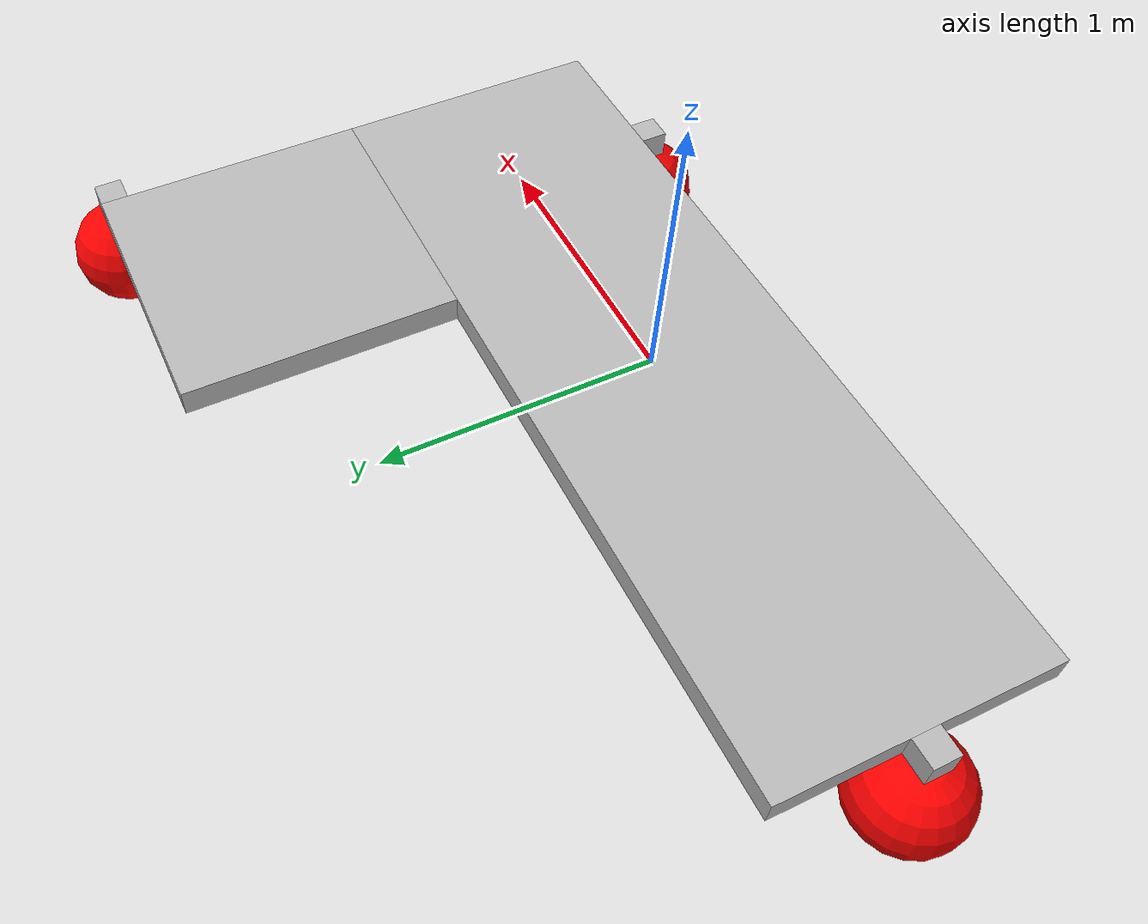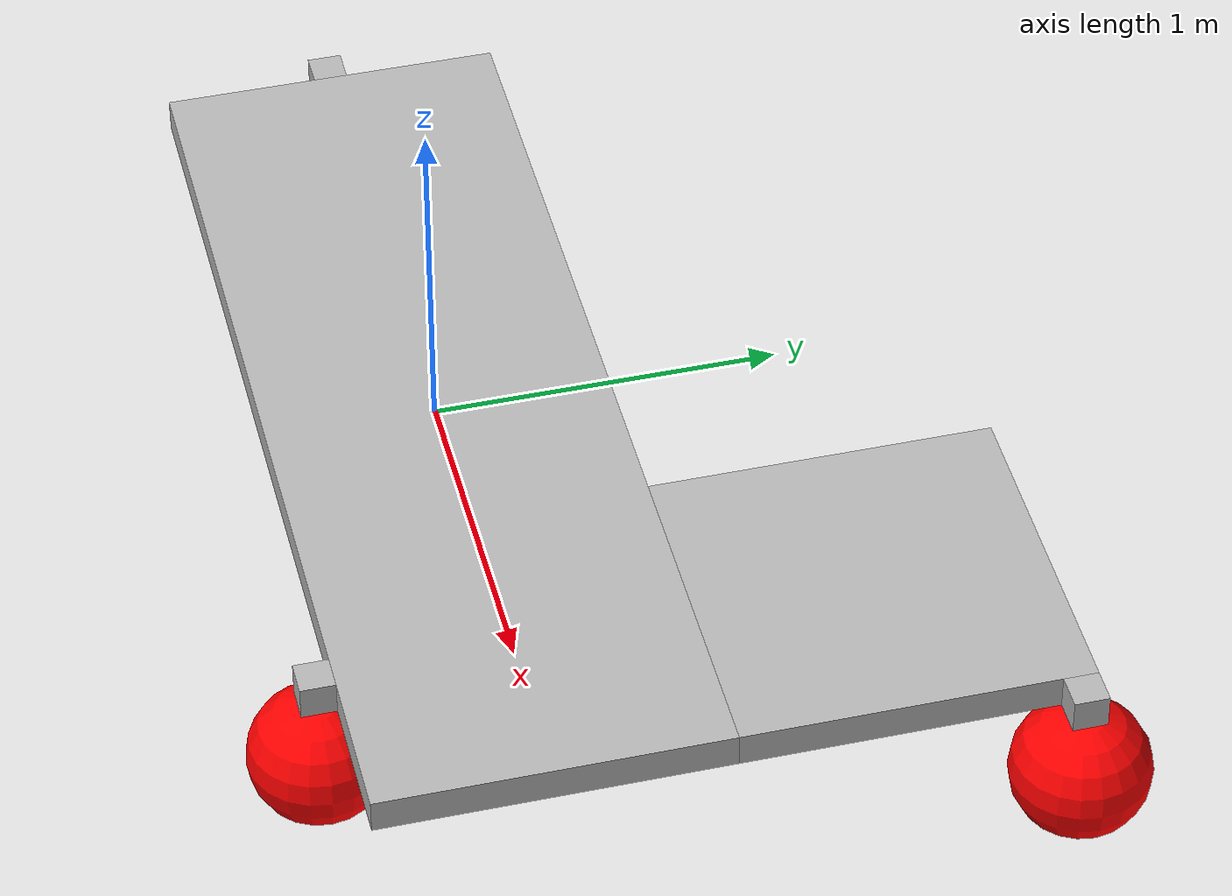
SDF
<?xml version='1.0'?>
<sdf version='1.0'>
  <model name="wheel_ball">
    <static>false</static>
    <link name="obstacle_1">
      <pose>0 0 0 0 0 0</pose>
        <inertial>
          <inertia>
            <ixx>0.505</ixx>
            <ixy>0</ixy>
            <ixz>0</ixz>
            <iyy>4.505</iyy>
            <iyz>0</iyz>
            <izz>5.5</izz>
          </inertia>
          <mass>6</mass>
        </inertial>

        <collision name="my_collision">
            <geometry>
             <box>
             <size>3.0 1.0 0.1</size>
             </box>
            </geometry>

        </collision>

        <visual name="my_visual">
            <geometry>
             <box>
             <size>3.0 1.0 0.1</size>
             </box>
            </geometry>
        </visual>
    </link>

    <link name="obstacle_2">
      <pose>1 1 0 0 0 0</pose>
        <inertial>
          <inertia>
            <ixx>0.168333333</ixx>
            <ixy>0</ixy>
            <ixz>0</ixz>
            <iyy>0.168333333</iyy>
            <iyz>0</iyz>
            <izz>0.333333333</izz>
          </inertia>
          <mass>2</mass>
        </inertial>

        <collision name="my_collision">
            <geometry>
             <box>
             <size>1.0 1.0 0.1</size>
             </box>
            </geometry>

        </collision>

        <visual name="my_visual">
            <geometry>
             <box>
             <size>1.0 1.0 0.1</size>
             </box>
            </geometry>
        </visual>
    </link>

    <joint name="obstacle_joint" type="fixed">
      <parent>obstacle_1</parent>
      <child>obstacle_2</child>
      <pose>0.00 0.0 0.0 0 0.0 0.0</pose>
    </joint>

    <link name="payload_link_1">
      <pose>-1.55 0 0 0 0 0</pose>
        <inertial>
          <inertia>
            <ixx>0.0000666</ixx>
            <ixy>0</ixy>
            <ixz>0</ixz>
            <iyy>0.0000666</iyy>
            <iyz>0</iyz>
            <izz>0.0000666</izz>
          </inertia>
          <mass>0.04</mass>
        </inertial>

        <collision name="payload_link_1_collision">
            <geometry>
             <box>
             <size>0.1 0.1 0.1</size>
             </box>
            </geometry>

        </collision>

        <visual name="payload_link_1_visual">
            <geometry>
             <box>
             <size>0.1 0.1 0.1</size>
             </box>
            </geometry>
        </visual>
    </link>

    <joint name="payload_joint_1" type="revolute">
      <parent>obstacle_1</parent>
      <child>payload_link_1</child>
      <axis>
        <xyz>0 0 1</xyz>
        <limit>
          <upper>0</upper>
          <lower>0</lower>
        </limit>
      </axis>
      <sensor name="force_torque" type="force_torque">
        <update_rate>200</update_rate>
        <always_on>true</always_on>
      </sensor>
    </joint>

    <link name="payload_link_2">
      <pose>1 -0.55 0 0 0 0</pose>
        <inertial>
          <inertia>
            <ixx>0.0000666</ixx>
            <ixy>0</ixy>
            <ixz>0</ixz>
            <iyy>0.0000666</iyy>
            <iyz>0</iyz>
            <izz>0.0000666</izz>
          </inertia>
          <mass>0.04</mass>
        </inertial>

        <collision name="payload_link_2_collision">
            <geometry>
             <box>
             <size>0.1 0.1 0.1</size>
             </box>
            </geometry>

        </collision>

        <visual name="payload_link_2_visual">
            <geometry>
             <box>
             <size>0.1 0.1 0.1</size>
             </box>
            </geometry>
        </visual>
    </link>

    <joint name="payload_joint_2" type="revolute">
      <parent>obstacle_1</parent>
      <child>payload_link_2</child>
      <axis>
        <xyz>0 0 1</xyz>
        <limit>
          <upper>0</upper>
          <lower>0</lower>
        </limit>
      </axis>
      <sensor name="force_torque" type="force_torque">
        <update_rate>200</update_rate>
        <always_on>true</always_on>
      </sensor>
    </joint>

    <link name="payload_link_3">
      <pose>1.55 1.45 0 0 0 0</pose>
        <inertial>
          <inertia>
            <ixx>0.0000666</ixx>
            <ixy>0</ixy>
            <ixz>0</ixz>
            <iyy>0.0000666</iyy>
            <iyz>0</iyz>
            <izz>0.0000666</izz>
          </inertia>
          <mass>0.04</mass>
        </inertial>

        <collision name="payload_link_3_collision">
            <geometry>
             <box>
             <size>0.1 0.1 0.1</size>
             </box>
            </geometry>

        </collision>

        <visual name="payload_link_3_visual">
            <geometry>
             <box>
             <size>0.1 0.1 0.1</size>
             </box>
            </geometry>
        </visual>
    </link>

    <joint name="payload_joint_3" type="revolute">
      <parent>obstacle_2</parent>
      <child>payload_link_3</child>
      <axis>
        <xyz>0 0 1</xyz>
        <limit>
          <upper>0</upper>
          <lower>0</lower>
        </limit>
      </axis>
      <sensor name="force_torque" type="force_torque">
        <update_rate>200</update_rate>
        <always_on>true</always_on>
      </sensor>
    </joint>

    <link name='ball_1'>
      <pose>-1.55 0 -0.25 0 0 0</pose>
      <inertial>
        <inertia>
          <ixx>0.0016</ixx>
          <ixy>0</ixy>
          <ixz>0</ixz>
          <iyy>0.0016</iyy>
          <iyz>0</iyz>
          <izz>0.0016</izz>
          </inertia>
        <mass>0.1</mass>
      </inertial>
      <collision name='ball_1_collision'>
        <geometry>
          <sphere>
            <radius>0.2</radius>
          </sphere>
        </geometry>
      </collision>
      <visual name='ball_1_visual'>
        <geometry>
          <sphere>
            <radius>0.2</radius>
          </sphere>
        </geometry>
        <material>
          <diffuse>1 0 0 1</diffuse>
          <ambient>1 0 0 1</ambient>
        </material>
      </visual>
    </link>
    <joint name="ball_1_joint" type="ball">
      <parent>payload_link_1</parent>
      <child>ball_1</child>
      <pose> 0 0 0 0 0 0 </pose>
    </joint>

    <link name='ball_2'>
      <pose>1 -0.55 -0.25 0 0 0</pose>
      <inertial>
        <inertia>
          <ixx>0.0016</ixx>
          <ixy>0</ixy>
          <ixz>0</ixz>
          <iyy>0.0016</iyy>
          <iyz>0</iyz>
          <izz>0.0016</izz>
          </inertia>
        <mass>0.1</mass>
      </inertial>
      <collision name='ball_2_collision'>
        <geometry>
          <sphere>
            <radius>0.2</radius>
          </sphere>
        </geometry>
      </collision>
      <visual name='ball_2_visual'>
        <geometry>
          <sphere>
            <radius>0.2</radius>
          </sphere>
        </geometry>
        <material>
          <diffuse>1 0 0 1</diffuse>
          <ambient>1 0 0 1</ambient>
        </material>
      </visual>
    </link>
    <joint name="ball_2_joint" type="ball">
      <parent>payload_link_2</parent>
      <child>ball_2</child>
      <pose> 0 0 0 0 0 0 </pose>
    </joint>

    <link name='ball_3'>
      <pose>1.55 1.45 -0.25 0 0 0</pose>
      <inertial>
        <inertia>
          <ixx>0.0016</ixx>
          <ixy>0</ixy>
          <ixz>0</ixz>
          <iyy>0.0016</iyy>
          <iyz>0</iyz>
          <izz>0.0016</izz>
          </inertia>
        <mass>0.1</mass>
      </inertial>
      <collision name='ball_3_collision'>
        <geometry>
          <sphere>
            <radius>0.2</radius>
          </sphere>
        </geometry>
      </collision>
      <visual name='ball_3_visual'>
        <geometry>
          <sphere>
            <radius>0.2</radius>
          </sphere>
        </geometry>
        <material>
          <diffuse>1 0 0 1</diffuse>
          <ambient>1 0 0 1</ambient>
        </material>
      </visual>
    </link>
    <joint name="ball_3_joint" type="ball">
      <parent>payload_link_3</parent>
      <child>ball_3</child>
      <pose> 0 0 0 0 0 0 </pose>
    </joint>

    <link name="payload_IMU">
      <pose>0 0 0.06 0 0 0</pose>
        <inertial>
          <inertia>
            <ixx>0.000004165</ixx>
            <ixy>0</ixy>
            <ixz>0</ixz>
            <iyy>0.000185</iyy>
            <iyz>0</iyz>
            <izz>0.000185</izz>
          </inertia>
          <mass>0.0001</mass>
        </inertial>

        <collision name="payload_IMU_collision">
            <geometry>
             <box>
             <size>0.01 0.01 0.01</size>
             </box>
            </geometry>

        </collision>

        <visual name="payload_IMU_visual">
            <geometry>
             <box>
             <size>0.01 0.01 0.01</size>
             </box>
            </geometry>
        </visual>

        <sensor name="IMU" type="imu">
          <plugin name="IMU_plugin" filename="libgazebo_ros_imu_sensor.so">
            <always_on>true</always_on>
              <topicName>/IMU</topicName>
              <updateRateHZ>50</updateRateHZ>
              <frameName>payload_IMU</frameName>
          </plugin>
        </sensor>
    </link>

    <joint name="payload_imu_joint" type="fixed">
      <parent>obstacle_1</parent>
      <child>payload_IMU</child>
      <pose>0.00 0.0 0.0 0 0.0 0.0</pose>
    </joint>

    <plugin name="p3d_base_controller" filename="libgazebo_ros_p3d.so">
      <alwaysOn>true</alwaysOn>
      <updateRate>50.0</updateRate>
      <bodyName>payload_IMU</bodyName>
      <topicName>position</topicName>
      <gaussianNoise>0.01</gaussianNoise>
      <frameName>world</frameName>
      <xyzOffsets>0 0 0</xyzOffsets>
      <rpyOffsets>0 0 0</rpyOffsets>
    </plugin>

    <plugin name="ft_sensor" filename="libgazebo_ros_ft_sensor.so">
      <always_on>true</always_on>
      <updateRate>200.0</updateRate>
      <topicName>/payload_joint_1_ft_sensor</topicName>
      <jointName>payload_joint_1</jointName>
    </plugin>
    <plugin name="ft_sensor" filename="libgazebo_ros_ft_sensor.so">
      <always_on>true</always_on>
      <updateRate>200.0</updateRate>
      <topicName>/payload_joint_2_ft_sensor</topicName>
      <jointName>payload_joint_2</jointName>
    </plugin>
    <plugin name="ft_sensor" filename="libgazebo_ros_ft_sensor.so">
      <always_on>true</always_on>
      <updateRate>200.0</updateRate>
      <topicName>/payload_joint_3_ft_sensor</topicName>
      <jointName>payload_joint_3</jointName>
    </plugin>

  </model>
</sdf>
